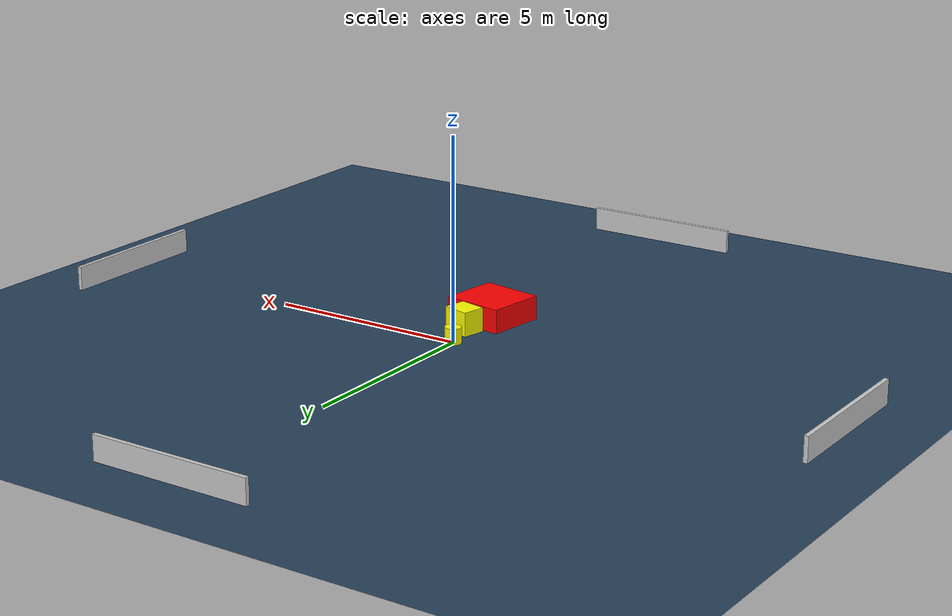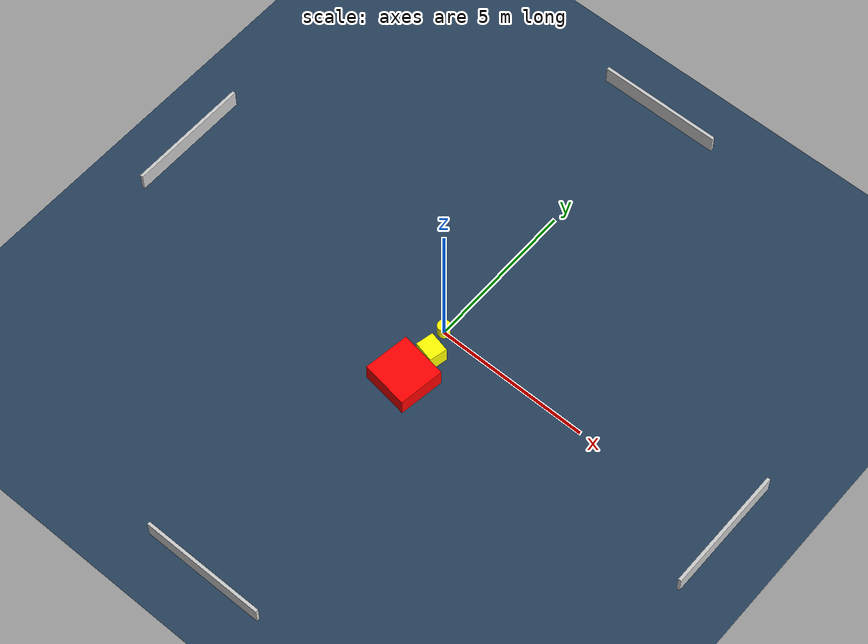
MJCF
<?xml version="1.0" ?>
<mujoco model="generated_environment">
  <option timestep="0.01" integrator="RK4" cone="elliptic"/>
  <default>
    <geom density="1"/>
  </default>
  <asset>
    <texture builtin="gradient" height="3072" name="skybox" rgb1="0.3 0.5 0.7" rgb2="0 0 0" type="skybox" width="512"/>
    <texture builtin="checker" height="300" name="groundplane" rgb1="0.2 0.3 0.4" rgb2="0.1 0.2 0.3" type="2d" width="300"/>
    <material name="groundplane" reflectance="0.2" texrepeat="5 5" texture="groundplane"/>
  </asset>
  <worldbody>
    <light dir="0 0 -1" directional="true" pos="0 0 1.5"/>
    <geom condim="3" friction="0.5 0.005 0.001" material="groundplane" name="floor" pos="0 0 0" size="0 0 0.05" type="plane"/>
    <body name="walls">
      <geom name="wall_1" condim="4" pos="-10.0 0.0 0.3" rgba="0.800000011920929 0.800000011920929 0.800000011920929 1.0" size="0.05 2.0 0.3" type="box"/>
      <geom name="wall_2" condim="4" pos="10.0 0.0 0.3" rgba="0.800000011920929 0.800000011920929 0.800000011920929 1.0" size="0.05 2.0 0.3" type="box"/>
      <geom name="wall_3" condim="4" pos="0.0 -10.0 0.3" rgba="0.800000011920929 0.800000011920929 0.800000011920929 1.0" size="2.0 0.05 0.3" type="box"/>
      <geom name="wall_4" condim="4" pos="0.0 10.0 0.3" rgba="0.800000011920929 0.800000011920929 0.800000011920929 1.0" size="2.0 0.05 0.3" type="box"/>
    </body>
    <body name="robot">
      <joint name="joint_x" type="slide" pos="0 0 0" axis="1 0 0"/>
      <joint name="joint_y" type="slide" pos="0 0 0" axis="0 1 0"/>
      <geom name="robot" type="cylinder" pos="0.0 0.0 0.2" size="0.2 0.2 0.0" mass="5.0" friction="1.0 0.005 0.0001" condim="4" rgba="1.0 1.0 0.0 1.0"/>
    </body>
    <body name="obstacle_1_movable">
      <geom name="obstacle_1_movable" condim="4" pos="0.255818623161084 -0.8438805279248178 0.3" euler="0 0 77.27967941616733" friction="0.0 0.005 0.001" rgba="1.0 1.0 0.0 1.0" size="0.2873913596200435 0.3344547115049666 0.3" type="box" mass="0.1"/>
      <joint type="free"/>
    </body>
    <body name="obstacle_2_static">
      <geom name="obstacle_2_static" condim="4" pos="0.15093336619435327 -1.9111868129874547 0.3" euler="0 0 261.8379867517658" friction="0.0 0.005 0.001" rgba="1.0 0.0 0.0 1.0" size="0.7378279785764896 0.7648908060480635 0.3" type="box"/>
    </body>
  </worldbody>
  <actuator>
    <motor name="actuator_x" joint="joint_x" gear="1" ctrlrange="-1 1"/>
    <motor name="actuator_y" joint="joint_y" gear="1" ctrlrange="-1 1"/>
  </actuator>
</mujoco>
